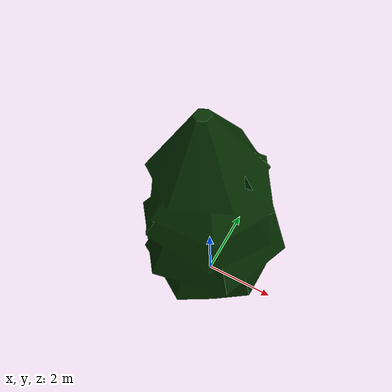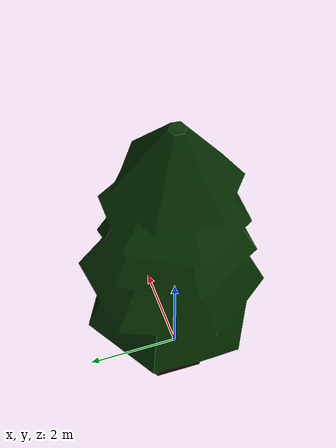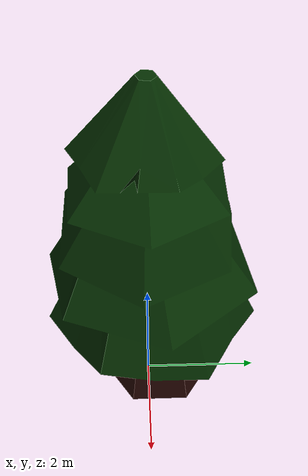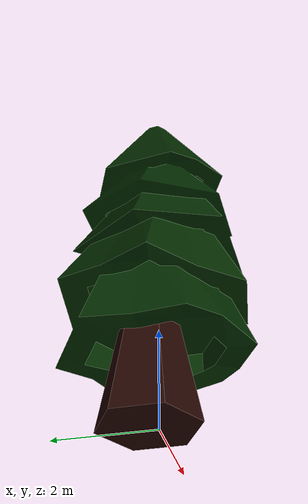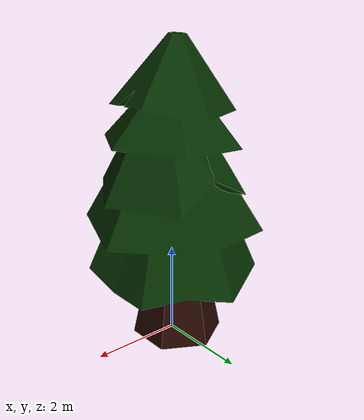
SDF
<?xml version="1.0"?>
<sdf version="1.5">
  <model name="aquabot_sapling">
    <static>true</static>
    <link name="link">
      <collision name="collision">
        <pose>0 0 3.5 0 0 0</pose>
        <geometry>
          <box>
            <size>4 4 7</size>
          </box>
        </geometry>
      </collision>
      <visual name="visual">
        <pose>0.0 0.0 0.0 0 0 0 </pose>
        <geometry>
          <mesh>
            <uri>mesh/sapling.dae</uri>
          </mesh>
        </geometry>
      </visual>
    </link>
  </model>
</sdf>
